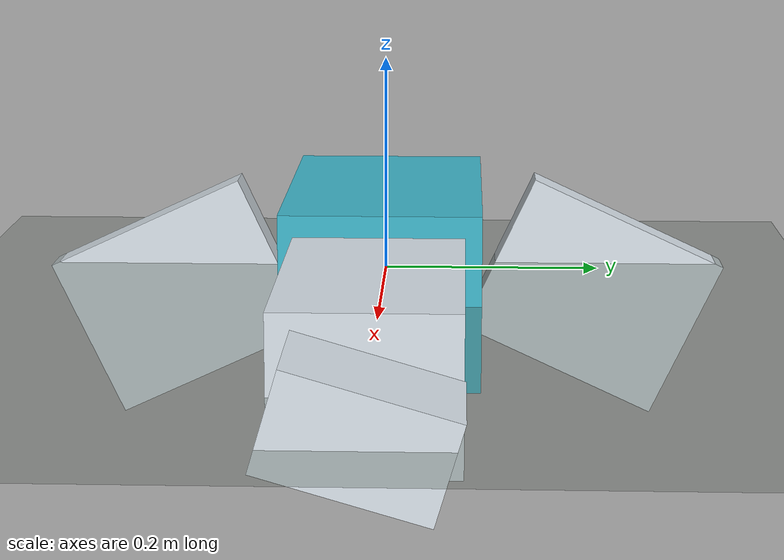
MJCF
<mujoco model="criatura">
  <compiler angle="degree" autolimits="true"/>
  <option timestep="0.002083" gravity="0 0 -9.81" integrator="implicitfast"/>
  <default>
    <geom type="box" density="300.0" rgba="0.85 0.89 0.92 1"/>
    <joint type="hinge"/>
    <motor ctrlrange="-1 1"/>
  </default>
  <worldbody>
    <geom name="suelo" type="plane" size="0 0 1" friction="1 0.005 0.0001" rgba="0.3 0.35 0.3 1"/>
    <body name="p0_n0" pos="0.00000 0.00000 0.00000" quat="1.000000 0.000000 0.000000 0.000000">
      <freejoint name="raiz"/>
      <geom name="g_p0_n0" size="0.15000 0.09000 0.08000" rgba="0.25 0.72 0.8 1"/>
      <body name="p1_n1" pos="0.30000 0.00000 0.00000" quat="1.000000 0.000000 0.000000 0.000000">
        <joint name="p1_n1_j0" axis="0.0000 0.0000 1.0000" pos="-0.15000 0 0" range="-60.00 60.00" damping="0.2925"/>
        <geom name="g_p1_n1" size="0.13000 0.07500 0.06500"/>
        <body name="p2_n3" pos="0.20238 0.00000 0.00000" quat="0.989812 -0.142382 0.000000 0.000000">
          <joint name="p2_n3_j0" axis="0.0000 1.0000 0.0000" pos="-0.07238 0 0" range="-45.70 45.70" damping="0.1614"/>
          <joint name="p2_n3_j1" axis="0.0000 0.0000 1.0000" pos="-0.07238 0 0" range="-45.70 45.70" damping="0.1614"/>
          <geom name="g_p2_n3" size="0.05238 0.06800 0.03957"/>
        </body>
      </body>
      <body name="p3_n2" pos="-0.04500 0.19876 -0.03471" quat="0.596368 0.379928 0.596368 0.379928">
        <joint name="p3_n2_j0" axis="0.0000 1.0000 0.0000" pos="-0.12000 0 0" range="-55.71 55.71" damping="0.0960"/>
        <joint name="p3_n2_j1" axis="0.0000 0.0000 1.0000" pos="-0.12000 0 0" range="-55.71 55.71" damping="0.0960"/>
        <geom name="g_p3_n2" size="0.10000 0.08000 0.02000"/>
      </body>
      <body name="p4_n2" pos="-0.03029 -0.19876 -0.03471" quat="0.596368 -0.379928 0.596368 -0.379928">
        <joint name="p4_n2_j0" axis="0.0000 -1.0000 0.0000" pos="-0.12000 0 0" range="-55.71 55.71" damping="0.0960"/>
        <joint name="p4_n2_j1" axis="0.0000 0.0000 1.0000" pos="-0.12000 0 0" range="-55.71 55.71" damping="0.0960"/>
        <geom name="g_p4_n2" size="0.10000 0.08000 0.02000"/>
      </body>
    </body>
  </worldbody>
  <actuator>
    <motor name="m_p1_n1_j0" joint="p1_n1_j0" gear="5.8500"/>
    <motor name="m_p2_n3_j0" joint="p2_n3_j0" gear="3.2286"/>
    <motor name="m_p2_n3_j1" joint="p2_n3_j1" gear="3.2286"/>
    <motor name="m_p3_n2_j0" joint="p3_n2_j0" gear="1.9200"/>
    <motor name="m_p3_n2_j1" joint="p3_n2_j1" gear="1.9200"/>
    <motor name="m_p4_n2_j0" joint="p4_n2_j0" gear="-1.9200"/>
    <motor name="m_p4_n2_j1" joint="p4_n2_j1" gear="-1.9200"/>
  </actuator>
</mujoco>
